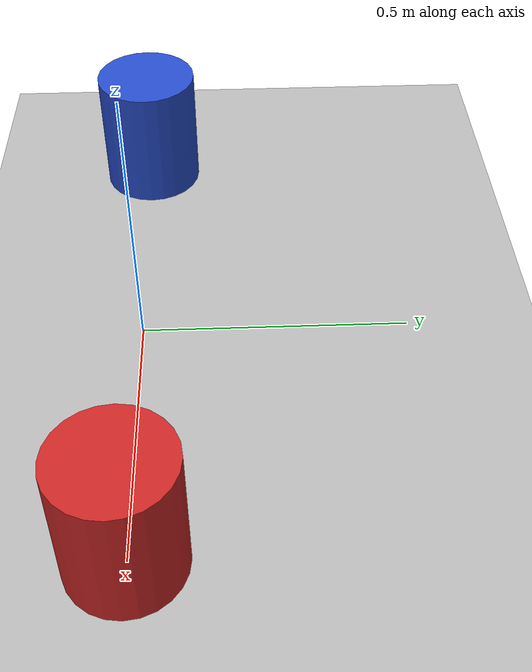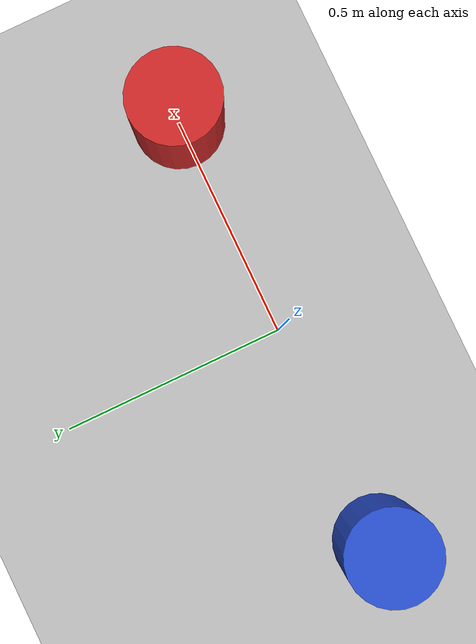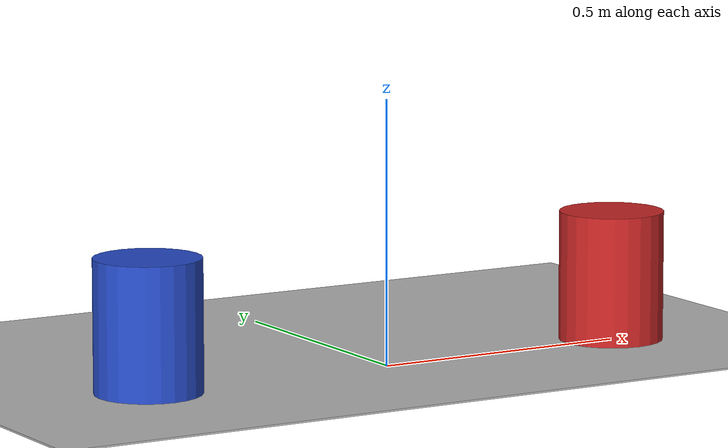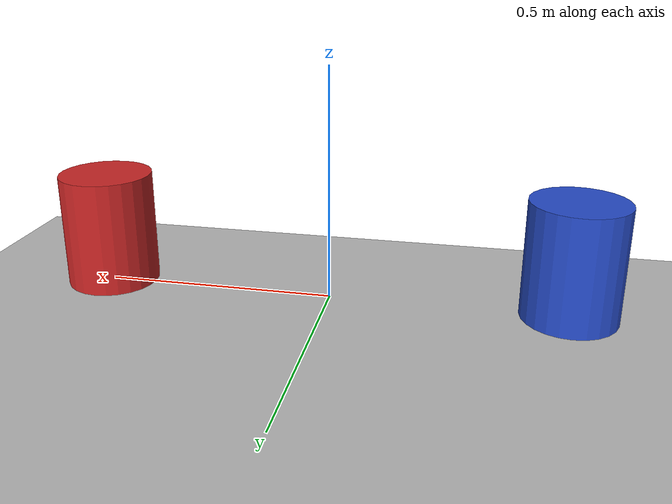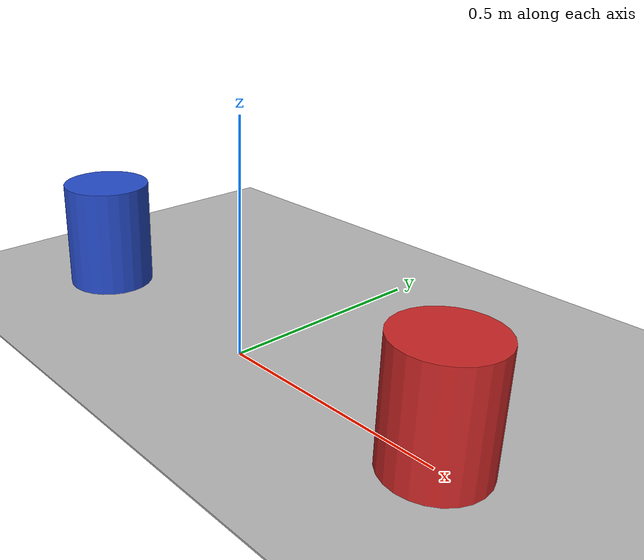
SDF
<?xml version="1.0"?>
<sdf version="1.4">
<model name="obstacle_avoidance">
  <static>true</static>
    <link name="floor">
      <collision name="collision">
        <geometry>
          <plane>
            <normal>0 0 1</normal>
            <size>3.5 3.5</size>
          </plane>
        </geometry>
        <surface>
          <friction>
            <ode>
              <mu>100</mu>
              <mu2>50</mu2>
            </ode>
          </friction>
        </surface>
      </collision>
      <visual name="visual">
        <cast_shadows>false</cast_shadows>
        <geometry>
          <plane>
            <normal>0 0 1</normal>
            <size>3.5 3.5</size>
          </plane>
        </geometry>
        <material>
          <script>
            <uri>model://task1/materials/scripts</uri>
            <uri>model://task1/materials/textures</uri>
            <name>Task1Floor/Image</name>
          </script>
        </material>
      </visual>
    </link>
    <link name='BLUE'>
      <pose frame=''>-0.5 0 0.125 0 0 0</pose>
      <collision name='coll'>
        <geometry>
          <cylinder>
            <radius>0.1</radius>
            <length>0.25</length>
          </cylinder>
        </geometry>
        <max_contacts>10</max_contacts>
        <surface>
          <bounce/>
          <friction>
            <ode/>
          </friction>
          <contact>
            <ode/>
          </contact>
        </surface>
      </collision>
      <visual name='vis'>
        <geometry>
          <cylinder>
            <radius>0.1</radius>
            <length>0.25</length>
          </cylinder>
        </geometry>
        <material>
          <script>
            <uri>file://media/materials/scripts/gazebo.material</uri>
            <name>Gazebo/Blue</name>
          </script>
        </material>
      </visual>
    </link>
    <link name='RED'>
      <pose frame=''>0.5 0 0.125 0 0 0</pose>
      <collision name='coll'>
        <geometry>
          <cylinder>
            <radius>0.1</radius>
            <length>0.25</length>
          </cylinder>
        </geometry>
        <max_contacts>10</max_contacts>
        <surface>
          <bounce/>
          <friction>
            <ode/>
          </friction>
          <contact>
            <ode/>
          </contact>
        </surface>
      </collision>
      <visual name='vis'>
        <geometry>
          <cylinder>
            <radius>0.1</radius>
            <length>0.25</length>
          </cylinder>
        </geometry>
        <material>
          <script>
            <uri>file://media/materials/scripts/gazebo.material</uri>
            <name>Gazebo/Red</name>
          </script>
        </material>
      </visual>
    </link>
  </model>
</sdf>
